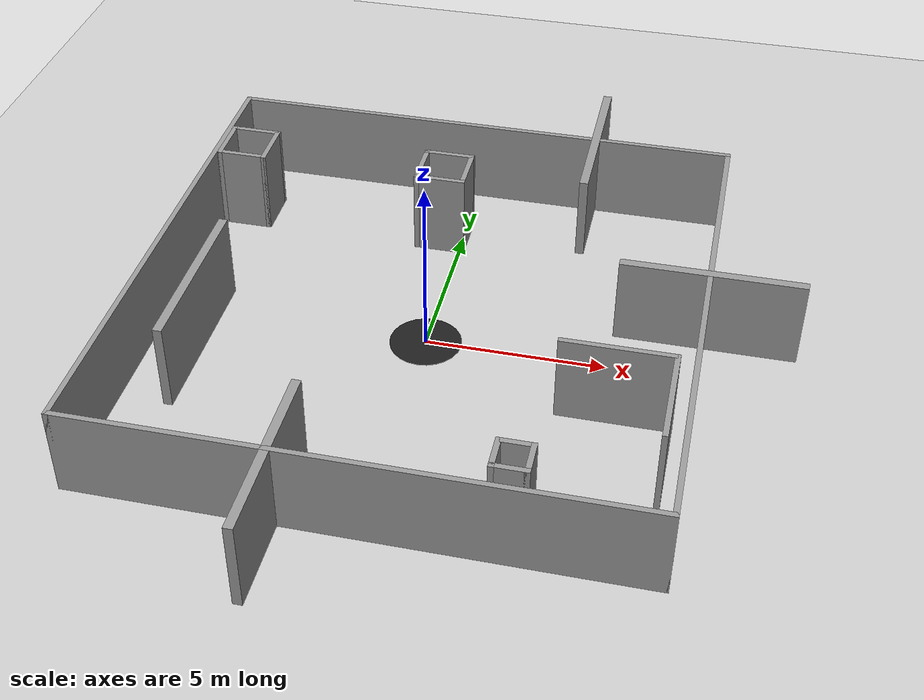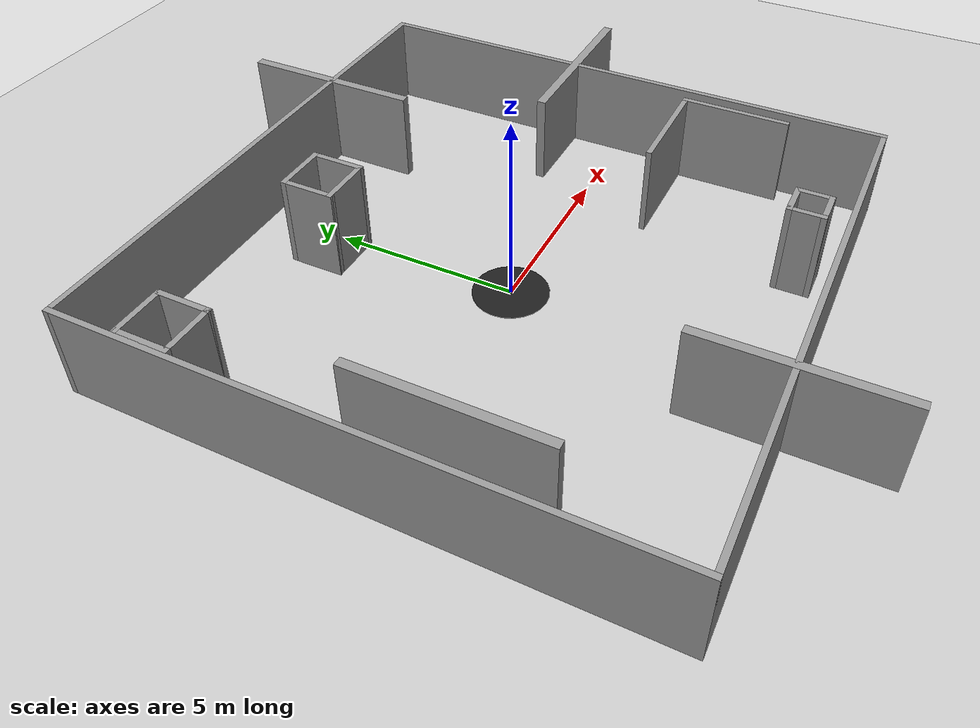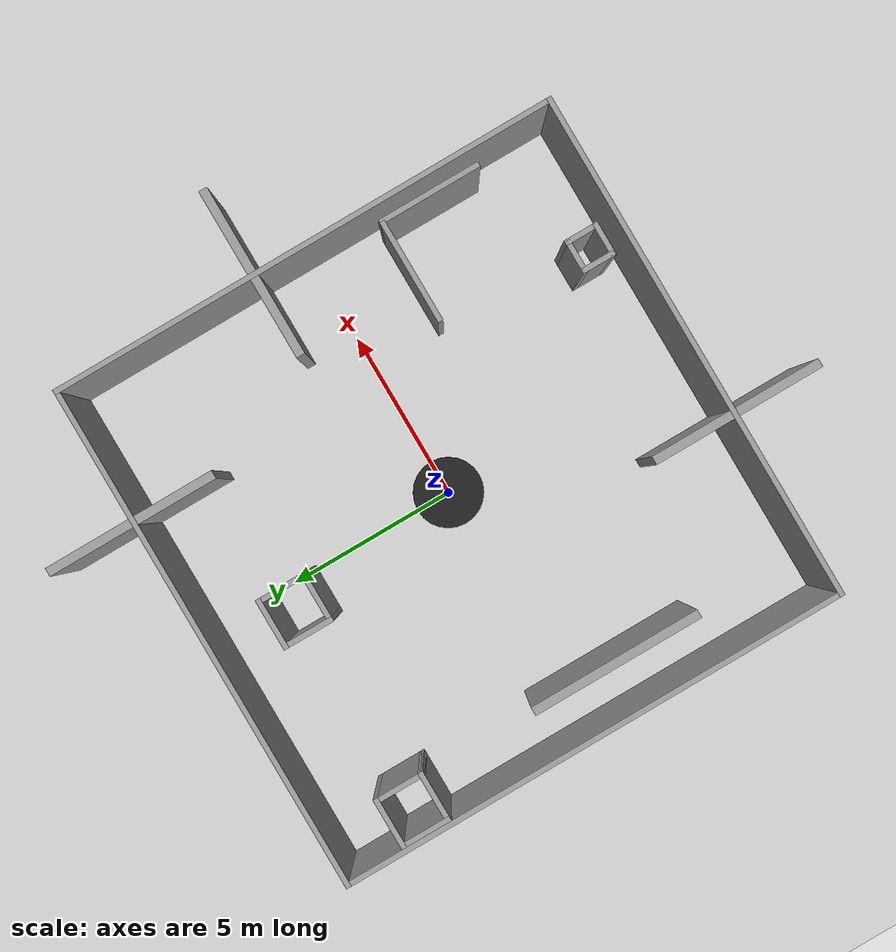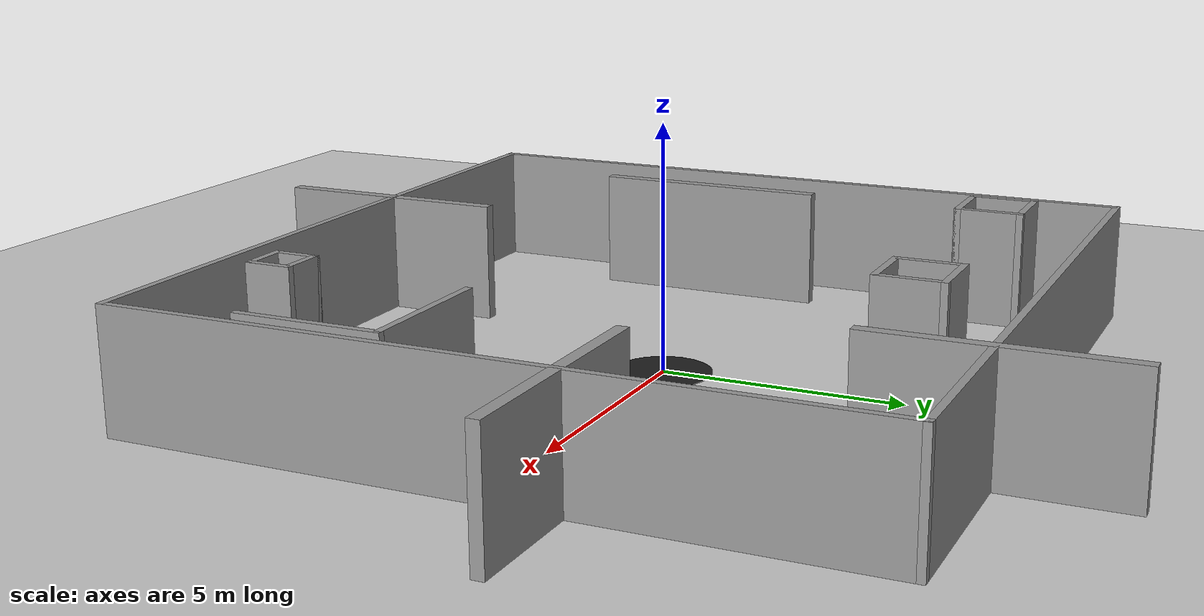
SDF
<?xml version="1.0" ?>
<sdf version="1.7">
  <world name="default">

    <!-- World properties -->
    <gravity>0 0 -9.8</gravity>
    <magnetic_field>6e-06 2.3e-05 -4.2e-05</magnetic_field>
    <atmosphere type='adiabatic'/>
    <scene>
      <ambient>0.4 0.4 0.4 1</ambient>
      <background>0.7 0.7 0.7 1</background>
      <shadows>0</shadows>
    </scene>
    <audio>
      <device>default</device>
    </audio>
    <wind/>
    <spherical_coordinates>
      <surface_model>EARTH_WGS84</surface_model>
      <latitude_deg>0</latitude_deg>
      <longitude_deg>0</longitude_deg>
      <elevation>0</elevation>
      <heading_deg>0</heading_deg>
    </spherical_coordinates>

    <physics type="ode">

      <!-- Physics x1 realtime-->
      <max_step_size>0.001</max_step_size>
      <real_time_update_rate>1000.0</real_time_update_rate>
      <real_time_factor>1</real_time_factor>

      <!-- Physics x2 realtime-->

      <ode>
        <solver>
          <type>quick</type>
          <iters>150</iters>
          <precon_iters>0</precon_iters>
          <sor>1.400000</sor>
          <use_dynamic_moi_rescaling>1</use_dynamic_moi_rescaling>
        </solver>
        <constraints>
          <cfm>0.00001</cfm>
          <erp>0.2</erp>
          <contact_max_correcting_vel>2000.000000</contact_max_correcting_vel>
          <contact_surface_layer>0.01000</contact_surface_layer>
        </constraints>
      </ode>
    </physics>

    <plugin name="gazebo_ros_state" filename="libgazebo_ros_state.so">
      <ros>
        <namespace>/gazebo_drl</namespace>
        <argument>model_states:=model_states_plug</argument>
        <argument>link_states:=link_states_plug</argument>
      </ros>
      <update_rate>30.0</update_rate>
    </plugin>

    <!-- A camera -->
    <gui fullscreen='0'>
      <camera name='user_camera'>
        <pose>0 0 27.8175 3.14159 1.57079 3.14159</pose>
        <view_controller>orbit</view_controller>
        <projection_type>perspective</projection_type>
      </camera>
    </gui>

    <!-- A global light source -->
    <include>
      <uri>model://sun</uri>
    </include>

    <!-- A ground plane -->
    <include>
      <uri>model://ground_plane</uri>
    </include>

    <!-- Goal -->
    <include>
      <uri>model://goal_area</uri>
      <pose>0.0 0.0 0.0 0 0 0</pose>
    </include>

    <!-- Walls -->

    <include>
      <uri>model://stage_1//wall_outler</uri>
    </include>

    <!-- Top Left Area -->
    <include>
      <uri>model://stage_1//wall_single_5m_1</uri>
    </include>

    <include>
      <uri>model://stage_1//wall_single_5m_2</uri>
    </include>

    <!-- Top Right Area -->
    <include>
      <uri>model://stage_1//wall_Lshape_2_1</uri>
    </include>

    <include>
      <uri>model://stage_1//pillar_2_1</uri>
    </include>

    <!-- Bottom Left Area -->
    <include>
      <uri>model://stage_1//pillar_1_1</uri>
    </include>

    <include>
      <uri>model://stage_1//pillar_1_2</uri>
    </include>

    <!-- Bottom Right Area -->
    <include>
      <uri>model://stage_1//wall_single_5m_3</uri>
    </include>

    <include>
      <uri>model://stage_1//wall_single_5m_4</uri>
    </include>

  </world>
</sdf>

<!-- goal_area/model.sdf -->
<sdf version='1.7'>
  <model name='goal_area'>
    <link name='link_1'>
      <inertial>
        <mass>1</mass>
        <inertia>
          <ixx>0.145833</ixx>
          <ixy>0</ixy>
          <ixz>0</ixz>
          <iyy>0.145833</iyy>
          <iyz>0</iyz>
          <izz>0.125</izz>
        </inertia>
        <pose>0 0 0 0 -0 0</pose>
      </inertial>
      <pose>-0 0 0 0 -0 0</pose>
      <gravity>1</gravity>
      <self_collide>0</self_collide>
      <kinematic>0</kinematic>
      <enable_wind>0</enable_wind>
      <visual name='visual'>
        <pose>0 0 0 0 -0 0</pose>
        <geometry>
          <cylinder>
            <radius>1.0</radius>
            <length>0.01</length>
          </cylinder>
        </geometry>
        <material>
          <script>
            <uri>file://media/materials/scripts/gazebo.material</uri>
            <name>Gazebo/Black</name>
          </script>
        </material>
        <transparency>0</transparency>
        <cast_shadows>0</cast_shadows>
      </visual>
      <collision name='collision'>
        <laser_retro>0</laser_retro>
        <max_contacts>10</max_contacts>
        <pose>0 0 0 0 -0 0</pose>
        <geometry>
          <cylinder>
            <radius>0.001</radius>
            <length>0.001</length>
          </cylinder>
        </geometry>
        <surface>
          <friction>
            <ode>
              <mu>1</mu>
              <mu2>1</mu2>
              <fdir1>0 0 0</fdir1>
              <slip1>0</slip1>
              <slip2>0</slip2>
            </ode>
            <torsional>
              <coefficient>1</coefficient>
              <patch_radius>0</patch_radius>
              <surface_radius>0</surface_radius>
              <use_patch_radius>1</use_patch_radius>
              <ode>
                <slip>0</slip>
              </ode>
            </torsional>
          </friction>
          <bounce>
            <restitution_coefficient>0</restitution_coefficient>
            <threshold>1e+06</threshold>
          </bounce>
          <contact>
            <collide_without_contact>0</collide_without_contact>
            <collide_without_contact_bitmask>1</collide_without_contact_bitmask>
            <collide_bitmask>1</collide_bitmask>
            <ode>
              <soft_cfm>0</soft_cfm>
              <soft_erp>0.2</soft_erp>
              <kp>1e+13</kp>
              <kd>1</kd>
              <max_vel>0.01</max_vel>
              <min_depth>0</min_depth>
            </ode>
            <bullet>
              <split_impulse>1</split_impulse>
              <split_impulse_penetration_threshold>-0.01</split_impulse_penetration_threshold>
              <soft_cfm>0</soft_cfm>
              <soft_erp>0.2</soft_erp>
              <kp>1e+13</kp>
              <kd>1</kd>
            </bullet>
          </contact>
        </surface>
      </collision>
    </link>
    <static>0</static>
    <allow_auto_disable>1</allow_auto_disable>
  </model>
</sdf>

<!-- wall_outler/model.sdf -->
<sdf version='1.7'>
  <model name='wall_outler'>
    <pose>0 0 0 0 -0 0</pose>
    <link name='Wall_1'>
      <collision name='Wall_1_Collision'>
        <geometry>
          <box>
            <size>15 0.15 2.5</size>
          </box>
        </geometry>
        <pose>0 0 1.25 0 -0 0</pose>
      </collision>
      <visual name='Wall_1_Visual'>
        <pose>0 0 1.25 0 -0 0</pose>
        <geometry>
          <box>
            <size>15 0.15 2.5</size>
          </box>
        </geometry>
        <material>
          <script>
            <uri>file://media/materials/scripts/gazebo.material</uri>
            <name>Gazebo/Grey</name>
          </script>
          <ambient>1 1 1 1</ambient>
        </material>
        <meta>
          <layer>0</layer>
        </meta>
      </visual>
      <pose>-0 -7.425 0 0 -0 0</pose>
    </link>
    <link name='Wall_2'>
      <collision name='Wall_2_Collision'>
        <geometry>
          <box>
            <size>15 0.15 2.5</size>
          </box>
        </geometry>
        <pose>0 0 1.25 0 -0 0</pose>
      </collision>
      <visual name='Wall_2_Visual'>
        <pose>0 0 1.25 0 -0 0</pose>
        <geometry>
          <box>
            <size>15 0.15 2.5</size>
          </box>
        </geometry>
        <material>
          <script>
            <uri>file://media/materials/scripts/gazebo.material</uri>
            <name>Gazebo/Grey</name>
          </script>
          <ambient>1 1 1 1</ambient>
        </material>
        <meta>
          <layer>0</layer>
        </meta>
      </visual>
      <pose>7.425 -0 0 0 -0 1.5708</pose>
    </link>
    <link name='Wall_3'>
      <collision name='Wall_3_Collision'>
        <geometry>
          <box>
            <size>15 0.15 2.5</size>
          </box>
        </geometry>
        <pose>0 0 1.25 0 -0 0</pose>
      </collision>
      <visual name='Wall_3_Visual'>
        <pose>0 0 1.25 0 -0 0</pose>
        <geometry>
          <box>
            <size>15 0.15 2.5</size>
          </box>
        </geometry>
        <material>
          <script>
            <uri>file://media/materials/scripts/gazebo.material</uri>
            <name>Gazebo/Grey</name>
          </script>
          <ambient>1 1 1 1</ambient>
        </material>
        <meta>
          <layer>0</layer>
        </meta>
      </visual>
      <pose>-0 7.425 0 0 -0 3.14159</pose>
    </link>
    <link name='Wall_4'>
      <collision name='Wall_4_Collision'>
        <geometry>
          <box>
            <size>15 0.15 2.5</size>
          </box>
        </geometry>
        <pose>0 0 1.25 0 -0 0</pose>
      </collision>
      <visual name='Wall_4_Visual'>
        <pose>0 0 1.25 0 -0 0</pose>
        <geometry>
          <box>
            <size>15 0.15 2.5</size>
          </box>
        </geometry>
        <material>
          <script>
            <uri>file://media/materials/scripts/gazebo.material</uri>
            <name>Gazebo/Grey</name>
          </script>
          <ambient>1 1 1 1</ambient>
        </material>
        <meta>
          <layer>0</layer>
        </meta>
      </visual>
      <pose>-7.425 -0 0 0 -0 -1.5708</pose>
    </link>
    <static>1</static>
  </model>
</sdf>

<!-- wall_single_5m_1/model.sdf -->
<sdf version='1.7'>
  <model name='wall_single_5m_1'>
    <pose>3.5 7.5 0.0 0 0 1.5708</pose>
    <link name='Wall_0'>
      <collision name='Wall_0_Collision'>
        <geometry>
          <box>
            <size>5 0.25 2.5</size>
          </box>
        </geometry>
        <pose>0 0 1.25 0 -0 0</pose>
      </collision>
      <visual name='Wall_0_Visual'>
        <pose>0 0 1.25 0 -0 0</pose>
        <geometry>
          <box>
            <size>5 0.25 2.5</size>
          </box>
        </geometry>
        <material>
          <script>
            <uri>file://media/materials/scripts/gazebo.material</uri>
            <name>Gazebo/Grey</name>
          </script>
          <ambient>1 1 1 1</ambient>
        </material>
        <meta>
          <layer>0</layer>
        </meta>
      </visual>
      <pose>0 0 0 0 0 0</pose>
    </link>
    <static>1</static>
  </model>
</sdf>

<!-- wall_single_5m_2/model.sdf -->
<sdf version='1.7'>
  <model name='wall_single_5m_2'>
    <pose>7.5 1.5 0.0 0 0 0</pose>
    <link name='Wall_0'>
      <collision name='Wall_0_Collision'>
        <geometry>
          <box>
            <size>5 0.25 2.5</size>
          </box>
        </geometry>
        <pose>0 0 1.25 0 -0 0</pose>
      </collision>
      <visual name='Wall_0_Visual'>
        <pose>0 0 1.25 0 -0 0</pose>
        <geometry>
          <box>
            <size>5 0.25 2.5</size>
          </box>
        </geometry>
        <material>
          <script>
            <uri>file://media/materials/scripts/gazebo.material</uri>
            <name>Gazebo/Grey</name>
          </script>
          <ambient>1 1 1 1</ambient>
        </material>
        <meta>
          <layer>0</layer>
        </meta>
      </visual>
      <pose>0 0 0 0 0 0</pose>
    </link>
    <static>1</static>
  </model>
</sdf>

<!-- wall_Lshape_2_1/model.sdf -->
<sdf version='1.7'>
  <model name='wall_Lshape_2_1'>
    <pose>4.5 -3.5 0.0 0 0 0</pose>

    <link name='Wall_3'>
      <collision name='Wall_3_Collision'>
        <geometry>
          <box>
            <size>3 0.15 2.5</size>
          </box>
        </geometry>
        <pose>0 0 1.25 0 -0 0</pose>
      </collision>
      <visual name='Wall_3_Visual'>
        <pose>0 0 1.25 0 -0 0</pose>
        <geometry>
          <box>
            <size>3 0.15 2.5</size>
          </box>
        </geometry>
        <material>
          <script>
            <uri>file://media/materials/scripts/gazebo.material</uri>
            <name>Gazebo/Grey</name>
          </script>
          <ambient>1 1 1 1</ambient>
        </material>
        <meta>
          <layer>0</layer>
        </meta>
      </visual>
      <pose>0.925 1.425 0 0 -0 3.14159</pose>
    </link>

    <link name='Wall_5'>
      <collision name='Wall_5_Collision'>
        <geometry>
          <box>
            <size>3 0.15 2.5</size>
          </box>
        </geometry>
        <pose>0 0 1.25 0 -0 0</pose>
      </collision>
      <visual name='Wall_5_Visual'>
        <pose>0 0 1.25 0 -0 0</pose>
        <geometry>
          <box>
            <size>3 0.15 2.5</size>
          </box>
        </geometry>
        <material>
          <script>
            <uri>file://media/materials/scripts/gazebo.material</uri>
            <name>Gazebo/Grey</name>
          </script>
          <ambient>1 1 1 1</ambient>
        </material>
        <meta>
          <layer>0</layer>
        </meta>
      </visual>
      <pose>2.425 0 0 0 -0 -1.5708</pose>
    </link>
    <static>1</static>
  </model>
</sdf>

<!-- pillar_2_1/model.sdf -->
<sdf version='1.7'>
  <model name='pillar_2_1'>

    <pose>5.0 -5.0 0.0 0 0 0</pose>

    <link name='Wall_12'>
      <collision name='Wall_12_Collision'>
        <geometry>
          <box>
            <size>1 0.15 2.5</size>
          </box>
        </geometry>
        <pose>0 0 1.25 0 -0 0</pose>
      </collision>
      <visual name='Wall_12_Visual'>
        <pose>0 0 1.25 0 -0 0</pose>
        <geometry>
          <box>
            <size>1 0.15 2.5</size>
          </box>
        </geometry>
        <material>
          <script>
            <uri>file://media/materials/scripts/gazebo.material</uri>
            <name>Gazebo/Grey</name>
          </script>
          <ambient>1 1 1 1</ambient>
        </material>
        <meta>
          <layer>0</layer>
        </meta>
      </visual>
      <pose>-1.83014 -1.3808 0 0 -0 -1.5708</pose>
    </link>
    <link name='Wall_13'>
      <collision name='Wall_13_Collision'>
        <geometry>
          <box>
            <size>1 0.15 2.5</size>
          </box>
        </geometry>
        <pose>0 0 1.25 0 -0 0</pose>
      </collision>
      <visual name='Wall_13_Visual'>
        <pose>0 0 1.25 0 -0 0</pose>
        <geometry>
          <box>
            <size>1 0.15 2.5</size>
          </box>
        </geometry>
        <material>
          <script>
            <uri>file://media/materials/scripts/gazebo.material</uri>
            <name>Gazebo/Grey</name>
          </script>
          <ambient>1 1 1 1</ambient>
        </material>
        <meta>
          <layer>0</layer>
        </meta>
      </visual>
      <pose>-1.40515 -1.8058 0 0 -0 0</pose>
    </link>
    <link name='Wall_14'>
      <collision name='Wall_14_Collision'>
        <geometry>
          <box>
            <size>1 0.15 2.5</size>
          </box>
        </geometry>
        <pose>0 0 1.25 0 -0 0</pose>
      </collision>
      <visual name='Wall_14_Visual'>
        <pose>0 0 1.25 0 -0 0</pose>
        <geometry>
          <box>
            <size>1 0.15 2.5</size>
          </box>
        </geometry>
        <material>
          <script>
            <uri>file://media/materials/scripts/gazebo.material</uri>
            <name>Gazebo/Grey</name>
          </script>
          <ambient>1 1 1 1</ambient>
        </material>
        <meta>
          <layer>0</layer>
        </meta>
      </visual>
      <pose>-0.980145 -1.3808 0 0 -0 1.5708</pose>
    </link>
    <link name='Wall_15'>
      <collision name='Wall_15_Collision'>
        <geometry>
          <box>
            <size>1 0.15 2.5</size>
          </box>
        </geometry>
        <pose>0 0 1.25 0 -0 0</pose>
      </collision>
      <visual name='Wall_15_Visual'>
        <pose>0 0 1.25 0 -0 0</pose>
        <geometry>
          <box>
            <size>1 0.15 2.5</size>
          </box>
        </geometry>
        <material>
          <script>
            <uri>file://media/materials/scripts/gazebo.material</uri>
            <name>Gazebo/Grey</name>
          </script>
          <ambient>1 1 1 1</ambient>
        </material>
        <meta>
          <layer>0</layer>
        </meta>
      </visual>
      <pose>-1.40515 -0.955801 0 0 -0 3.14159</pose>
    </link>
    <static>1</static>
  </model>
</sdf>

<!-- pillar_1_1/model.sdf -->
<sdf version='1.7'>
  <model name='pillar_1_1'>

    <pose>1.0 5.0 0.0 0 0 0</pose>

    <link name='Wall_10'>
      <collision name='Wall_10_Collision'>
        <geometry>
          <box>
            <size>1.5 0.15 2.5</size>
          </box>
        </geometry>
        <pose>0 0 1.25 0 -0 0</pose>
      </collision>
      <visual name='Wall_10_Visual'>
        <pose>0 0 1.25 0 -0 0</pose>
        <geometry>
          <box>
            <size>1.5 0.15 2.5</size>
          </box>
        </geometry>
        <material>
          <script>
            <uri>file://media/materials/scripts/gazebo.material</uri>
            <name>Gazebo/Grey</name>
          </script>
          <ambient>1 1 1 1</ambient>
        </material>
        <meta>
          <layer>0</layer>
        </meta>
      </visual>
      <pose>-1.608 0.675 0 0 -0 3.14159</pose>
    </link>

    <link name='Wall_7'>
      <collision name='Wall_7_Collision'>
        <geometry>
          <box>
            <size>1.5 0.15 2.5</size>
          </box>
        </geometry>
        <pose>0 0 1.25 0 -0 0</pose>
      </collision>
      <visual name='Wall_7_Visual'>
        <pose>0 0 1.25 0 -0 0</pose>
        <geometry>
          <box>
            <size>1.5 0.15 2.5</size>
          </box>
        </geometry>
        <material>
          <script>
            <uri>file://media/materials/scripts/gazebo.material</uri>
            <name>Gazebo/Grey</name>
          </script>
          <ambient>1 1 1 1</ambient>
        </material>
        <meta>
          <layer>0</layer>
        </meta>
      </visual>
      <pose>-2.283 0 0 0 -0 -1.5708</pose>
    </link>

    <link name='Wall_8'>
      <collision name='Wall_8_Collision'>
        <geometry>
          <box>
            <size>1.5 0.15 2.5</size>
          </box>
        </geometry>
        <pose>0 0 1.25 0 -0 0</pose>
      </collision>
      <visual name='Wall_8_Visual'>
        <pose>0 0 1.25 0 -0 0</pose>
        <geometry>
          <box>
            <size>1.5 0.15 2.5</size>
          </box>
        </geometry>
        <material>
          <script>
            <uri>file://media/materials/scripts/gazebo.material</uri>
            <name>Gazebo/Grey</name>
          </script>
          <ambient>1 1 1 1</ambient>
        </material>
        <meta>
          <layer>0</layer>
        </meta>
      </visual>
      <pose>-1.608 -0.675 0 0 -0 0</pose>
    </link>

    <link name='Wall_9'>
      <collision name='Wall_9_Collision'>
        <geometry>
          <box>
            <size>1.5 0.15 2.5</size>
          </box>
        </geometry>
        <pose>0 0 1.25 0 -0 0</pose>
      </collision>
      <visual name='Wall_9_Visual'>
        <pose>0 0 1.25 0 -0 0</pose>
        <geometry>
          <box>
            <size>1.5 0.15 2.5</size>
          </box>
        </geometry>
        <material>
          <script>
            <uri>file://media/materials/scripts/gazebo.material</uri>
            <name>Gazebo/Grey</name>
          </script>
          <ambient>1 1 1 1</ambient>
        </material>
        <meta>
          <layer>0</layer>
        </meta>
      </visual>
      <pose>-0.933002 0 0 0 -0 1.5708</pose>
    </link>

    <static>1</static>

  </model>
</sdf>

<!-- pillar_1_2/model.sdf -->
<sdf version='1.7'>
  <model name='pillar_1_2'>

    <pose>-5.0 5.0 0.0 0 0 0</pose>

    <link name='Wall_10'>
      <collision name='Wall_10_Collision'>
        <geometry>
          <box>
            <size>1.5 0.15 2.5</size>
          </box>
        </geometry>
        <pose>0 0 1.25 0 -0 0</pose>
      </collision>
      <visual name='Wall_10_Visual'>
        <pose>0 0 1.25 0 -0 0</pose>
        <geometry>
          <box>
            <size>1.5 0.15 2.5</size>
          </box>
        </geometry>
        <material>
          <script>
            <uri>file://media/materials/scripts/gazebo.material</uri>
            <name>Gazebo/Grey</name>
          </script>
          <ambient>1 1 1 1</ambient>
        </material>
        <meta>
          <layer>0</layer>
        </meta>
      </visual>
      <pose>-1.608 0.675 0 0 -0 3.14159</pose>
    </link>

    <link name='Wall_7'>
      <collision name='Wall_7_Collision'>
        <geometry>
          <box>
            <size>1.5 0.15 2.5</size>
          </box>
        </geometry>
        <pose>0 0 1.25 0 -0 0</pose>
      </collision>
      <visual name='Wall_7_Visual'>
        <pose>0 0 1.25 0 -0 0</pose>
        <geometry>
          <box>
            <size>1.5 0.15 2.5</size>
          </box>
        </geometry>
        <material>
          <script>
            <uri>file://media/materials/scripts/gazebo.material</uri>
            <name>Gazebo/Grey</name>
          </script>
          <ambient>1 1 1 1</ambient>
        </material>
        <meta>
          <layer>0</layer>
        </meta>
      </visual>
      <pose>-2.283 0 0 0 -0 -1.5708</pose>
    </link>

    <link name='Wall_8'>
      <collision name='Wall_8_Collision'>
        <geometry>
          <box>
            <size>1.5 0.15 2.5</size>
          </box>
        </geometry>
        <pose>0 0 1.25 0 -0 0</pose>
      </collision>
      <visual name='Wall_8_Visual'>
        <pose>0 0 1.25 0 -0 0</pose>
        <geometry>
          <box>
            <size>1.5 0.15 2.5</size>
          </box>
        </geometry>
        <material>
          <script>
            <uri>file://media/materials/scripts/gazebo.material</uri>
            <name>Gazebo/Grey</name>
          </script>
          <ambient>1 1 1 1</ambient>
        </material>
        <meta>
          <layer>0</layer>
        </meta>
      </visual>
      <pose>-1.608 -0.675 0 0 -0 0</pose>
    </link>

    <link name='Wall_9'>
      <collision name='Wall_9_Collision'>
        <geometry>
          <box>
            <size>1.5 0.15 2.5</size>
          </box>
        </geometry>
        <pose>0 0 1.25 0 -0 0</pose>
      </collision>
      <visual name='Wall_9_Visual'>
        <pose>0 0 1.25 0 -0 0</pose>
        <geometry>
          <box>
            <size>1.5 0.15 2.5</size>
          </box>
        </geometry>
        <material>
          <script>
            <uri>file://media/materials/scripts/gazebo.material</uri>
            <name>Gazebo/Grey</name>
          </script>
          <ambient>1 1 1 1</ambient>
        </material>
        <meta>
          <layer>0</layer>
        </meta>
      </visual>
      <pose>-0.933002 0 0 0 -0 1.5708</pose>
    </link>

    <static>1</static>

  </model>
</sdf>

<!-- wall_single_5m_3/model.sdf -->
<sdf version='1.7'>
  <model name='wall_single_5m_3'>
    <pose>-2.0 -7.5 0.0 0 0 1.5708</pose>
    <link name='Wall_0'>
      <collision name='Wall_0_Collision'>
        <geometry>
          <box>
            <size>5 0.25 2.5</size>
          </box>
        </geometry>
        <pose>0 0 1.25 0 -0 0</pose>
      </collision>
      <visual name='Wall_0_Visual'>
        <pose>0 0 1.25 0 -0 0</pose>
        <geometry>
          <box>
            <size>5 0.25 2.5</size>
          </box>
        </geometry>
        <material>
          <script>
            <uri>file://media/materials/scripts/gazebo.material</uri>
            <name>Gazebo/Grey</name>
          </script>
          <ambient>1 1 1 1</ambient>
        </material>
        <meta>
          <layer>0</layer>
        </meta>
      </visual>
      <pose>0 0 0 0 0 0</pose>
    </link>
    <static>1</static>
  </model>
</sdf>

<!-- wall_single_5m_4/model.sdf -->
<sdf version='1.7'>
  <model name='wall_single_5m_4'>
    <pose>-6.0 -1.5 0.0 0 0 1.5708</pose>
    <link name='Wall_0'>
      <collision name='Wall_0_Collision'>
        <geometry>
          <box>
            <size>5 0.25 2.5</size>
          </box>
        </geometry>
        <pose>0 0 1.25 0 -0 0</pose>
      </collision>
      <visual name='Wall_0_Visual'>
        <pose>0 0 1.25 0 -0 0</pose>
        <geometry>
          <box>
            <size>5 0.25 2.5</size>
          </box>
        </geometry>
        <material>
          <script>
            <uri>file://media/materials/scripts/gazebo.material</uri>
            <name>Gazebo/Grey</name>
          </script>
          <ambient>1 1 1 1</ambient>
        </material>
        <meta>
          <layer>0</layer>
        </meta>
      </visual>
      <pose>0 0 0 0 0 0</pose>
    </link>
    <static>1</static>
  </model>
</sdf>
